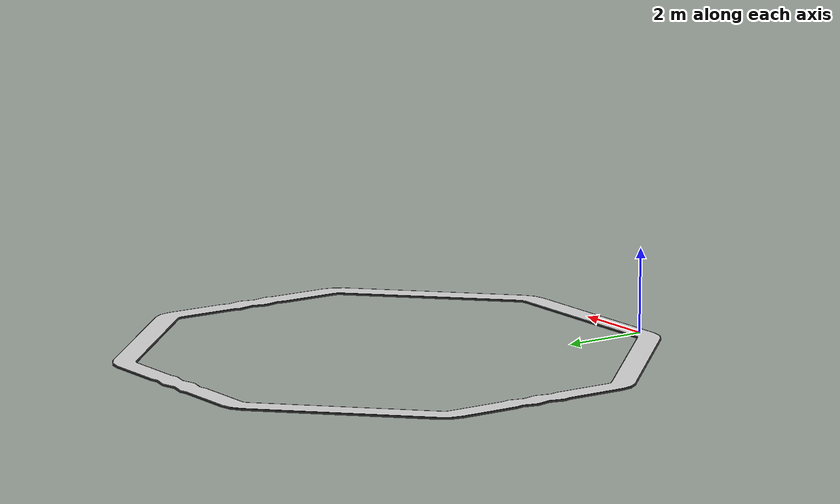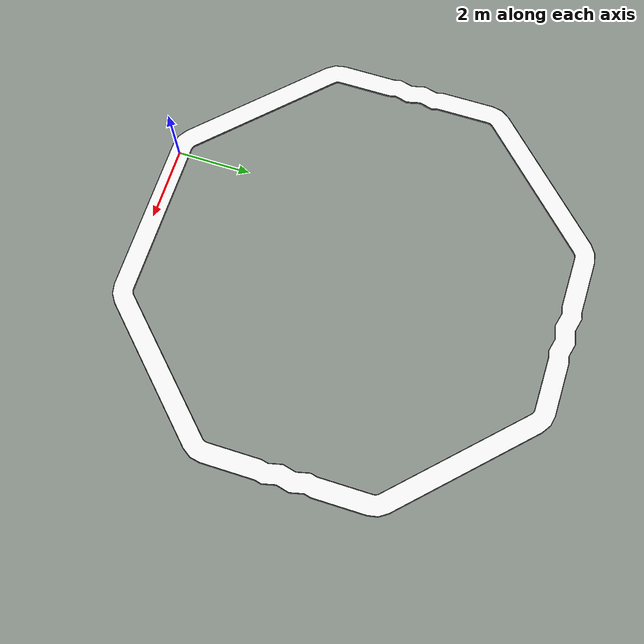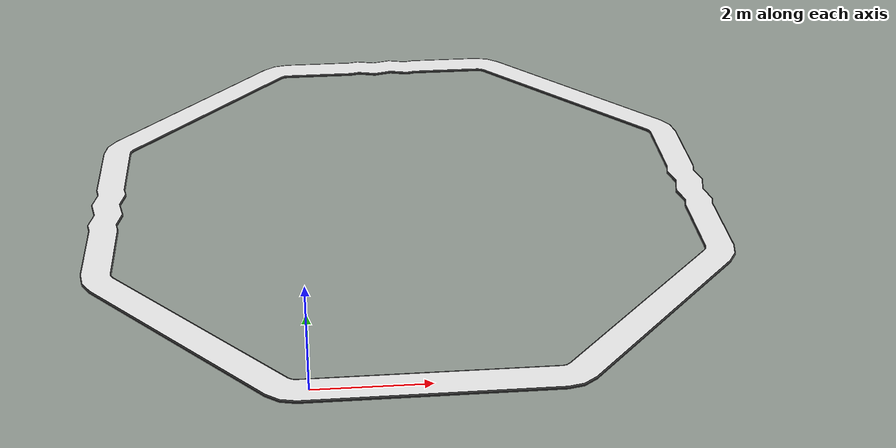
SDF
<?xml version="1.0" ?>
<sdf version="1.5">
  <model name='nxp_raceway_octagon'>
    <pose>0 0 0 0 0 0</pose>
    <link name='nxp_raceway_octagon_link'>
      <collision name='nxp_raceway_octagon_collision'>
        <geometry>
          <mesh>
            <scale>1 1 1</scale>
            <uri>model://nxp_raceway_octagon/meshes/CourseOctaSwingInside.stl</uri>
          </mesh>
        </geometry>
        <pose>-4.0 -.255 -.04 0 0 0</pose>
      </collision>
      <visual name='nxp_raceway_octagon_inside_visual'>
        <cast_shadows>0</cast_shadows>
        <pose>-4.0 -.255 -.04 0 0 0</pose>
        <geometry>
          <mesh>
            <scale>1 1 1</scale>
            <uri>model://nxp_raceway_octagon/meshes/CourseOctaSwingInside.stl</uri>
          </mesh>
        </geometry>
        <material>
          <script>
            <name>Gazebo/White</name>
            <uri>file://media/materials/scripts/gazebo.material</uri>
          </script>
        </material>
      </visual>
      <visual name='nxp_raceway_octagon_border_visual'>
        <cast_shadows>0</cast_shadows>
        <pose>-4.02 -.275 -.04 0 0 0</pose>
        <geometry>
          <mesh>
            <scale>1 1 1</scale>
            <uri>model://nxp_raceway_octagon/meshes/CourseOctaSwingBorder.stl</uri>
          </mesh>
        </geometry>
        <material>
          <script>
            <name>Gazebo/Black</name>
            <uri>file://media/materials/scripts/gazebo.material</uri>
          </script>
        </material>
      </visual>
    </link>
    <static>1</static>
  </model>
</sdf>
